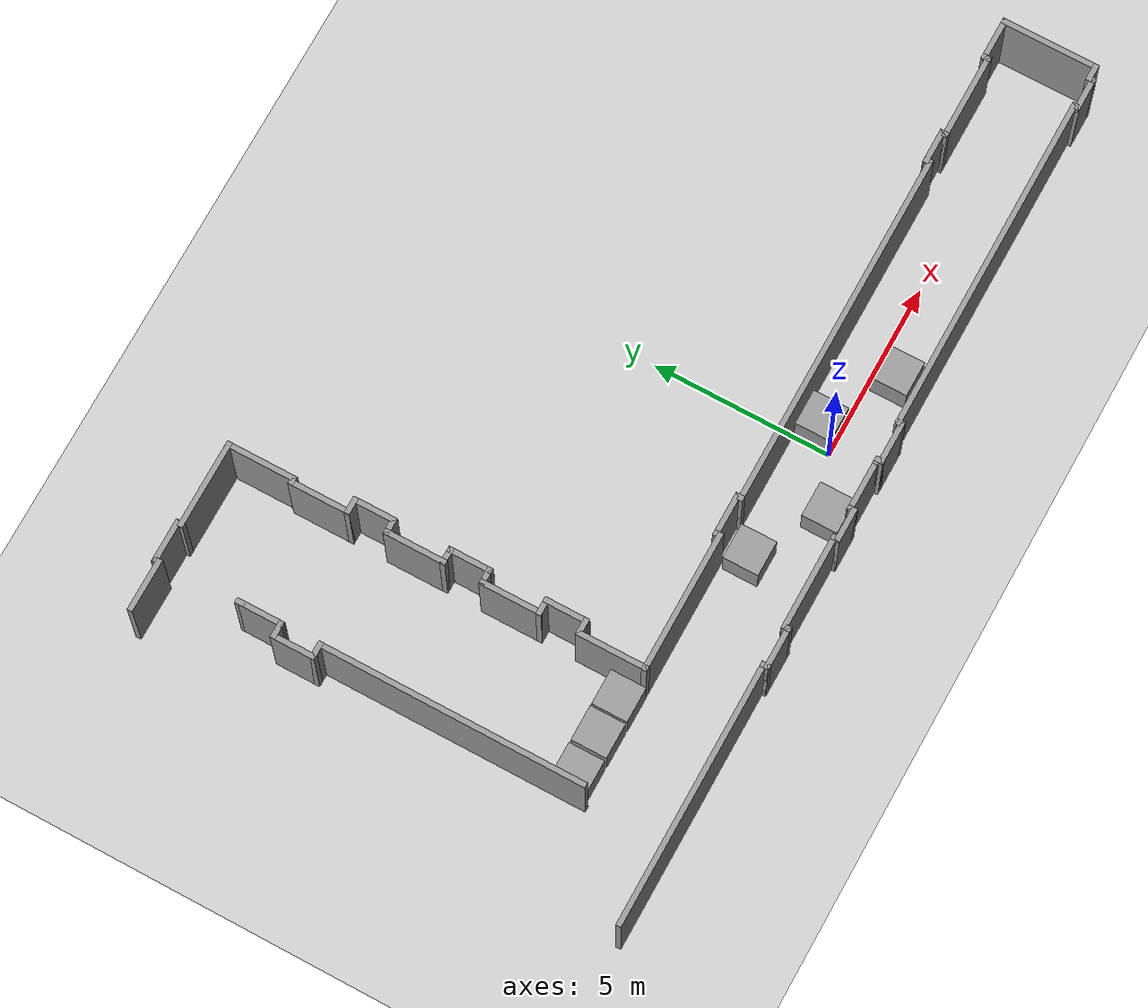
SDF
<sdf version="1.6">
 <world name="default">
  <model name="ground_plane">
   <static>1</static>
   <link name="link">
    <collision name="collision">
     <geometry><plane><normal>0 0 1</normal><size>100 100</size></plane></geometry>
     <surface><friction><ode><mu>100</mu><mu2>50</mu2></ode></friction></surface>
    </collision>
    <visual name="visual">
     <cast_shadows>0</cast_shadows>
     <geometry><plane><normal>0 0 1</normal><size>100 100</size></plane></geometry>
     <material>
      <script><uri>file://media/materials/scripts/gazebo.material</uri><name>Gazebo/Grey</name></script>
     </material>
    </visual>
   </link>
  </model>
  <model name="hallway">
   <pose>-18.4373 5.74333 0 0 -0 0</pose>
   <link name="Wall_185">
    <collision name="Wall_185_Collision">
     <geometry><box><size>7.5 0.15 2.5</size></box></geometry>
     <pose>0 0 1.25 0 -0 0</pose>
    </collision>
    <visual name="Wall_185_Visual">
     <pose>0 0 1.25 0 -0 0</pose>
     <geometry><box><size>7.5 0.15 2.5</size></box></geometry>
     <material>
      <script><uri>file://media/materials/scripts/gazebo.material</uri><name>Gazebo/Grey</name></script>
      <ambient>1 1 1 1</ambient>
     </material>
    </visual>
    <pose>7.43892 -1.04899 0 0 -0 1.5708</pose>
   </link>
   <link name="Wall_187">
    <collision name="Wall_187_Collision">
     <geometry><box><size>0.5 0.15 2.5</size></box></geometry>
     <pose>0 0 1.25 0 -0 0</pose>
    </collision>
    <visual name="Wall_187_Visual">
     <pose>0 0 1.25 0 -0 0</pose>
     <geometry><box><size>0.5 0.15 2.5</size></box></geometry>
     <material>
      <script><uri>file://media/materials/scripts/gazebo.material</uri><name>Gazebo/Grey</name></script>
      <ambient>1 1 1 1</ambient>
     </material>
    </visual>
    <pose>7.26392 2.62601 0 0 -0 3.14159</pose>
   </link>
   <link name="Wall_188">
    <collision name="Wall_188_Collision">
     <geometry><box><size>1.25 0.15 2.5</size></box></geometry>
     <pose>0 0 1.25 0 -0 0</pose>
    </collision>
    <visual name="Wall_188_Visual">
     <pose>0 0 1.25 0 -0 0</pose>
     <geometry><box><size>1.25 0.15 2.5</size></box></geometry>
     <material>
      <script><uri>file://media/materials/scripts/gazebo.material</uri><name>Gazebo/Grey</name></script>
      <ambient>1 1 1 1</ambient>
     </material>
    </visual>
    <pose>7.08892 3.17601 0 0 -0 1.5708</pose>
   </link>
   <link name="Wall_192">
    <collision name="Wall_192_Collision">
     <geometry><box><size>0.5 0.15 2.5</size></box></geometry>
     <pose>0 0 1.25 0 -0 0</pose>
    </collision>
    <visual name="Wall_192_Visual">
     <pose>0 0 1.25 0 -0 0</pose>
     <geometry><box><size>0.5 0.15 2.5</size></box></geometry>
     <material>
      <script><uri>file://media/materials/scripts/gazebo.material</uri><name>Gazebo/Grey</name></script>
      <ambient>1 1 1 1</ambient>
     </material>
    </visual>
    <pose>7.26392 3.72601 0 0 -0 0</pose>
   </link>
   <link name="Wall_193">
    <collision name="Wall_193_Collision">
     <geometry><box><size>1.25 0.15 2.5</size></box></geometry>
     <pose>0 0 1.25 0 -0 0</pose>
    </collision>
    <visual name="Wall_193_Visual">
     <pose>0 0 1.25 0 -0 0</pose>
     <geometry><box><size>1.25 0.15 2.5</size></box></geometry>
     <material>
      <script><uri>file://media/materials/scripts/gazebo.material</uri><name>Gazebo/Grey</name></script>
      <ambient>1 1 1 1</ambient>
     </material>
    </visual>
    <pose>7.43892 4.27601 0 0 -0 1.5708</pose>
   </link>
   <link name="Wall_194">
    <collision name="Wall_194_Collision">
     <geometry><box><size>0.25 0.15 2.5</size></box></geometry>
     <pose>0 0 1.25 0 -0 0</pose>
    </collision>
    <visual name="Wall_194_Visual">
     <pose>0 0 1.25 0 -0 0</pose>
     <geometry><box><size>0.25 0.15 2.5</size></box></geometry>
     <material>
      <script><uri>file://media/materials/scripts/gazebo.material</uri><name>Gazebo/Grey</name></script>
      <ambient>1 1 1 1</ambient>
     </material>
    </visual>
    <pose>7.43892 4.87601 0 0 -0 1.5708</pose>
   </link>
   <link name="Wall_32">
    <collision name="Wall_32_Collision">
     <geometry><box><size>7.5 0.15 2.5</size></box></geometry>
     <pose>0 0 1.25 0 -0 0</pose>
    </collision>
    <visual name="Wall_32_Visual">
     <pose>0 0 1.25 0 -0 0</pose>
     <geometry><box><size>7.5 0.15 2.5</size></box></geometry>
     <material>
      <script><uri>file://media/materials/scripts/gazebo.material</uri><name>Gazebo/Grey</name></script>
      <ambient>1 1 1 1</ambient>
     </material>
    </visual>
    <pose>8.5 -7.15 0 0 -0 0</pose>
   </link>
   <link name="Wall_33">
    <collision name="Wall_33_Collision">
     <geometry><box><size>0.25 0.15 2.5</size></box></geometry>
     <pose>0 0 1.25 0 -0 0</pose>
    </collision>
    <visual name="Wall_33_Visual">
     <pose>0 0 1.25 0 -0 0</pose>
     <geometry><box><size>0.25 0.15 2.5</size></box></geometry>
     <material>
      <script><uri>file://media/materials/scripts/gazebo.material</uri><name>Gazebo/Grey</name></script>
      <ambient>1 1 1 1</ambient>
     </material>
    </visual>
    <pose>12.175 -7.2 0 0 0 -1.5708</pose>
   </link>
   <link name="Wall_34">
    <collision name="Wall_34_Collision">
     <geometry><box><size>1.25 0.15 2.5</size></box></geometry>
     <pose>0 0 1.25 0 -0 0</pose>
    </collision>
    <visual name="Wall_34_Visual">
     <pose>0 0 1.25 0 -0 0</pose>
     <geometry><box><size>1.25 0.15 2.5</size></box></geometry>
     <material>
      <script><uri>file://media/materials/scripts/gazebo.material</uri><name>Gazebo/Grey</name></script>
      <ambient>1 1 1 1</ambient>
     </material>
    </visual>
    <pose>12.725 -7.25 0 0 -0 0</pose>
   </link>
   <link name="Wall_35">
    <collision name="Wall_35_Collision">
     <geometry><box><size>0.25 0.15 2.5</size></box></geometry>
     <pose>0 0 1.25 0 -0 0</pose>
    </collision>
    <visual name="Wall_35_Visual">
     <pose>0 0 1.25 0 -0 0</pose>
     <geometry><box><size>0.25 0.15 2.5</size></box></geometry>
     <material>
      <script><uri>file://media/materials/scripts/gazebo.material</uri><name>Gazebo/Grey</name></script>
      <ambient>1 1 1 1</ambient>
     </material>
    </visual>
    <pose>13.275 -7.2 0 0 -0 1.5708</pose>
   </link>
   <link name="Wall_36">
    <collision name="Wall_36_Collision">
     <geometry><box><size>2.75 0.15 2.5</size></box></geometry>
     <pose>0 0 1.25 0 -0 0</pose>
    </collision>
    <visual name="Wall_36_Visual">
     <pose>0 0 1.25 0 -0 0</pose>
     <geometry><box><size>2.75 0.15 2.5</size></box></geometry>
     <material>
      <script><uri>file://media/materials/scripts/gazebo.material</uri><name>Gazebo/Grey</name></script>
      <ambient>1 1 1 1</ambient>
     </material>
    </visual>
    <pose>14.575 -7.15 0 0 -0 0</pose>
   </link>
   <link name="Wall_37">
    <collision name="Wall_37_Collision">
     <geometry><box><size>0.25 0.15 2.5</size></box></geometry>
     <pose>0 0 1.25 0 -0 0</pose>
    </collision>
    <visual name="Wall_37_Visual">
     <pose>0 0 1.25 0 -0 0</pose>
     <geometry><box><size>0.25 0.15 2.5</size></box></geometry>
     <material>
      <script><uri>file://media/materials/scripts/gazebo.material</uri><name>Gazebo/Grey</name></script>
      <ambient>1 1 1 1</ambient>
     </material>
    </visual>
    <pose>15.875 -7.2 0 0 0 -1.5708</pose>
   </link>
   <link name="Wall_38">
    <collision name="Wall_38_Collision">
     <geometry><box><size>1 0.15 2.5</size></box></geometry>
     <pose>0 0 1.25 0 -0 0</pose>
    </collision>
    <visual name="Wall_38_Visual">
     <pose>0 0 1.25 0 -0 0</pose>
     <geometry><box><size>1 0.15 2.5</size></box></geometry>
     <material>
      <script><uri>file://media/materials/scripts/gazebo.material</uri><name>Gazebo/Grey</name></script>
      <ambient>1 1 1 1</ambient>
     </material>
    </visual>
    <pose>16.3 -7.25 0 0 -0 0</pose>
   </link>
   <link name="Wall_39">
    <collision name="Wall_39_Collision">
     <geometry><box><size>0.25 0.15 2.5</size></box></geometry>
     <pose>0 0 1.25 0 -0 0</pose>
    </collision>
    <visual name="Wall_39_Visual">
     <pose>0 0 1.25 0 -0 0</pose>
     <geometry><box><size>0.25 0.15 2.5</size></box></geometry>
     <material>
      <script><uri>file://media/materials/scripts/gazebo.material</uri><name>Gazebo/Grey</name></script>
      <ambient>1 1 1 1</ambient>
     </material>
    </visual>
    <pose>16.725 -7.2 0 0 -0 1.5708</pose>
   </link>
   <link name="Wall_40">
    <collision name="Wall_40_Collision">
     <geometry><box><size>1.5 0.15 2.5</size></box></geometry>
     <pose>0 0 1.25 0 -0 0</pose>
    </collision>
    <visual name="Wall_40_Visual">
     <pose>0 0 1.25 0 -0 0</pose>
     <geometry><box><size>1.5 0.15 2.5</size></box></geometry>
     <material>
      <script><uri>file://media/materials/scripts/gazebo.material</uri><name>Gazebo/Grey</name></script>
      <ambient>1 1 1 1</ambient>
     </material>
    </visual>
    <pose>17.4 -7.15 0 0 -0 0</pose>
   </link>
   <link name="Wall_42">
    <collision name="Wall_42_Collision">
     <geometry><box><size>0.25 0.15 2.5</size></box></geometry>
     <pose>0 0 1.25 0 -0 0</pose>
    </collision>
    <visual name="Wall_42_Visual">
     <pose>0 0 1.25 0 -0 0</pose>
     <geometry><box><size>0.25 0.15 2.5</size></box></geometry>
     <material>
      <script><uri>file://media/materials/scripts/gazebo.material</uri><name>Gazebo/Grey</name></script>
      <ambient>1 1 1 1</ambient>
     </material>
    </visual>
    <pose>18.125 -7.15 0 0 -0 0</pose>
   </link>
   <link name="Wall_43">
    <collision name="Wall_43_Collision">
     <geometry><box><size>0.25 0.15 2.5</size></box></geometry>
     <pose>0 0 1.25 0 -0 0</pose>
    </collision>
    <visual name="Wall_43_Visual">
     <pose>0 0 1.25 0 -0 0</pose>
     <geometry><box><size>0.25 0.15 2.5</size></box></geometry>
     <material>
      <script><uri>file://media/materials/scripts/gazebo.material</uri><name>Gazebo/Grey</name></script>
      <ambient>1 1 1 1</ambient>
     </material>
    </visual>
    <pose>18.175 -7.2 0 0 0 -1.5708</pose>
   </link>
   <link name="Wall_44">
    <collision name="Wall_44_Collision">
     <geometry><box><size>1.25 0.15 2.5</size></box></geometry>
     <pose>0 0 1.25 0 -0 0</pose>
    </collision>
    <visual name="Wall_44_Visual">
     <pose>0 0 1.25 0 -0 0</pose>
     <geometry><box><size>1.25 0.15 2.5</size></box></geometry>
     <material>
      <script><uri>file://media/materials/scripts/gazebo.material</uri><name>Gazebo/Grey</name></script>
      <ambient>1 1 1 1</ambient>
     </material>
    </visual>
    <pose>18.725 -7.25 0 0 -0 0</pose>
   </link>
   <link name="Wall_45">
    <collision name="Wall_45_Collision">
     <geometry><box><size>0.25 0.15 2.5</size></box></geometry>
     <pose>0 0 1.25 0 -0 0</pose>
    </collision>
    <visual name="Wall_45_Visual">
     <pose>0 0 1.25 0 -0 0</pose>
     <geometry><box><size>0.25 0.15 2.5</size></box></geometry>
     <material>
      <script><uri>file://media/materials/scripts/gazebo.material</uri><name>Gazebo/Grey</name></script>
      <ambient>1 1 1 1</ambient>
     </material>
    </visual>
    <pose>19.275 -7.2 0 0 -0 1.5708</pose>
   </link>
   <link name="Wall_46">
    <collision name="Wall_46_Collision">
     <geometry><box><size>9.75 0.15 2.5</size></box></geometry>
     <pose>0 0 1.25 0 -0 0</pose>
    </collision>
    <visual name="Wall_46_Visual">
     <pose>0 0 1.25 0 -0 0</pose>
     <geometry><box><size>9.75 0.15 2.5</size></box></geometry>
     <material>
      <script><uri>file://media/materials/scripts/gazebo.material</uri><name>Gazebo/Grey</name></script>
      <ambient>1 1 1 1</ambient>
     </material>
    </visual>
    <pose>24.075 -7.15 0 0 -0 0</pose>
   </link>
   <link name="Wall_47">
    <collision name="Wall_47_Collision">
     <geometry><box><size>0.25 0.15 2.5</size></box></geometry>
     <pose>0 0 1.25 0 -0 0</pose>
    </collision>
    <visual name="Wall_47_Visual">
     <pose>0 0 1.25 0 -0 0</pose>
     <geometry><box><size>0.25 0.15 2.5</size></box></geometry>
     <material>
      <script><uri>file://media/materials/scripts/gazebo.material</uri><name>Gazebo/Grey</name></script>
      <ambient>1 1 1 1</ambient>
     </material>
    </visual>
    <pose>28.875 -7.2 0 0 0 -1.5708</pose>
   </link>
   <link name="Wall_48">
    <collision name="Wall_48_Collision">
     <geometry><box><size>1 0.15 2.5</size></box></geometry>
     <pose>0 0 1.25 0 -0 0</pose>
    </collision>
    <visual name="Wall_48_Visual">
     <pose>0 0 1.25 0 -0 0</pose>
     <geometry><box><size>1 0.15 2.5</size></box></geometry>
     <material>
      <script><uri>file://media/materials/scripts/gazebo.material</uri><name>Gazebo/Grey</name></script>
      <ambient>1 1 1 1</ambient>
     </material>
    </visual>
    <pose>29.3 -7.25 0 0 -0 0</pose>
   </link>
   <link name="Wall_49">
    <collision name="Wall_49_Collision">
     <geometry><box><size>0.25 0.15 2.5</size></box></geometry>
     <pose>0 0 1.25 0 -0 0</pose>
    </collision>
    <visual name="Wall_49_Visual">
     <pose>0 0 1.25 0 -0 0</pose>
     <geometry><box><size>0.25 0.15 2.5</size></box></geometry>
     <material>
      <script><uri>file://media/materials/scripts/gazebo.material</uri><name>Gazebo/Grey</name></script>
      <ambient>1 1 1 1</ambient>
     </material>
    </visual>
    <pose>29.725 -7.2 0 0 -0 1.5708</pose>
   </link>
   <link name="Wall_50">
    <collision name="Wall_50_Collision">
     <geometry><box><size>0.5 0.15 2.5</size></box></geometry>
     <pose>0 0 1.25 0 -0 0</pose>
    </collision>
    <visual name="Wall_50_Visual">
     <pose>0 0 1.25 0 -0 0</pose>
     <geometry><box><size>0.5 0.15 2.5</size></box></geometry>
     <material>
      <script><uri>file://media/materials/scripts/gazebo.material</uri><name>Gazebo/Grey</name></script>
      <ambient>1 1 1 1</ambient>
     </material>
    </visual>
    <pose>29.9 -7.15 0 0 -0 0</pose>
   </link>
   <link name="Wall_51">
    <collision name="Wall_51_Collision">
     <geometry><box><size>2.75 0.15 2.5</size></box></geometry>
     <pose>0 0 1.25 0 -0 0</pose>
    </collision>
    <visual name="Wall_51_Visual">
     <pose>0 0 1.25 0 -0 0</pose>
     <geometry><box><size>2.75 0.15 2.5</size></box></geometry>
     <material>
      <script><uri>file://media/materials/scripts/gazebo.material</uri><name>Gazebo/Grey</name></script>
      <ambient>1 1 1 1</ambient>
     </material>
    </visual>
    <pose>30.075 -5.85 0 0 -0 1.5708</pose>
   </link>
   <link name="Wall_52">
    <collision name="Wall_52_Collision">
     <geometry><box><size>1.25 0.15 2.5</size></box></geometry>
     <pose>0 0 1.25 0 -0 0</pose>
    </collision>
    <visual name="Wall_52_Visual">
     <pose>0 0 1.25 0 -0 0</pose>
     <geometry><box><size>1.25 0.15 2.5</size></box></geometry>
     <material>
      <script><uri>file://media/materials/scripts/gazebo.material</uri><name>Gazebo/Grey</name></script>
      <ambient>1 1 1 1</ambient>
     </material>
    </visual>
    <pose>29.525 -4.55 0 0 -0 3.14159</pose>
   </link>
   <link name="Wall_53">
    <collision name="Wall_53_Collision">
     <geometry><box><size>0.25 0.15 2.5</size></box></geometry>
     <pose>0 0 1.25 0 -0 0</pose>
    </collision>
    <visual name="Wall_53_Visual">
     <pose>0 0 1.25 0 -0 0</pose>
     <geometry><box><size>0.25 0.15 2.5</size></box></geometry>
     <material>
      <script><uri>file://media/materials/scripts/gazebo.material</uri><name>Gazebo/Grey</name></script>
      <ambient>1 1 1 1</ambient>
     </material>
    </visual>
    <pose>28.975 -4.6 0 0 0 -1.5708</pose>
   </link>
   <link name="Wall_54">
    <collision name="Wall_54_Collision">
     <geometry><box><size>2.5 0.15 2.5</size></box></geometry>
     <pose>0 0 1.25 0 -0 0</pose>
    </collision>
    <visual name="Wall_54_Visual">
     <pose>0 0 1.25 0 -0 0</pose>
     <geometry><box><size>2.5 0.15 2.5</size></box></geometry>
     <material>
      <script><uri>file://media/materials/scripts/gazebo.material</uri><name>Gazebo/Grey</name></script>
      <ambient>1 1 1 1</ambient>
     </material>
    </visual>
    <pose>27.8 -4.65 0 0 -0 3.14159</pose>
   </link>
   <link name="Wall_55">
    <collision name="Wall_55_Collision">
     <geometry><box><size>0.25 0.15 2.5</size></box></geometry>
     <pose>0 0 1.25 0 -0 0</pose>
    </collision>
    <visual name="Wall_55_Visual">
     <pose>0 0 1.25 0 -0 0</pose>
     <geometry><box><size>0.25 0.15 2.5</size></box></geometry>
     <material>
      <script><uri>file://media/materials/scripts/gazebo.material</uri><name>Gazebo/Grey</name></script>
      <ambient>1 1 1 1</ambient>
     </material>
    </visual>
    <pose>26.625 -4.6 0 0 -0 1.5708</pose>
   </link>
   <link name="Wall_56">
    <collision name="Wall_56_Collision">
     <geometry><box><size>1 0.15 2.5</size></box></geometry>
     <pose>0 0 1.25 0 -0 0</pose>
    </collision>
    <visual name="Wall_56_Visual">
     <pose>0 0 1.25 0 -0 0</pose>
     <geometry><box><size>1 0.15 2.5</size></box></geometry>
     <material>
      <script><uri>file://media/materials/scripts/gazebo.material</uri><name>Gazebo/Grey</name></script>
      <ambient>1 1 1 1</ambient>
     </material>
    </visual>
    <pose>26.2 -4.55 0 0 -0 3.14159</pose>
   </link>
   <link name="Wall_57">
    <collision name="Wall_57_Collision">
     <geometry><box><size>0.25 0.15 2.5</size></box></geometry>
     <pose>0 0 1.25 0 -0 0</pose>
    </collision>
    <visual name="Wall_57_Visual">
     <pose>0 0 1.25 0 -0 0</pose>
     <geometry><box><size>0.25 0.15 2.5</size></box></geometry>
     <material>
      <script><uri>file://media/materials/scripts/gazebo.material</uri><name>Gazebo/Grey</name></script>
      <ambient>1 1 1 1</ambient>
     </material>
    </visual>
    <pose>25.775 -4.6 0 0 0 -1.5708</pose>
   </link>
   <link name="Wall_58">
    <collision name="Wall_58_Collision">
     <geometry><box><size>10.25 0.15 2.5</size></box></geometry>
     <pose>0 0 1.25 0 -0 0</pose>
    </collision>
    <visual name="Wall_58_Visual">
     <pose>0 0 1.25 0 -0 0</pose>
     <geometry><box><size>10.25 0.15 2.5</size></box></geometry>
     <material>
      <script><uri>file://media/materials/scripts/gazebo.material</uri><name>Gazebo/Grey</name></script>
      <ambient>1 1 1 1</ambient>
     </material>
    </visual>
    <pose>20.725 -4.65 0 0 -0 3.14159</pose>
   </link>
   <link name="Wall_59">
    <collision name="Wall_59_Collision">
     <geometry><box><size>0.25 0.15 2.5</size></box></geometry>
     <pose>0 0 1.25 0 -0 0</pose>
    </collision>
    <visual name="Wall_59_Visual">
     <pose>0 0 1.25 0 -0 0</pose>
     <geometry><box><size>0.25 0.15 2.5</size></box></geometry>
     <material>
      <script><uri>file://media/materials/scripts/gazebo.material</uri><name>Gazebo/Grey</name></script>
      <ambient>1 1 1 1</ambient>
     </material>
    </visual>
    <pose>15.675 -4.6 0 0 -0 1.5708</pose>
   </link>
   <link name="Wall_60">
    <collision name="Wall_60_Collision">
     <geometry><box><size>1.25 0.15 2.5</size></box></geometry>
     <pose>0 0 1.25 0 -0 0</pose>
    </collision>
    <visual name="Wall_60_Visual">
     <pose>0 0 1.25 0 -0 0</pose>
     <geometry><box><size>1.25 0.15 2.5</size></box></geometry>
     <material>
      <script><uri>file://media/materials/scripts/gazebo.material</uri><name>Gazebo/Grey</name></script>
      <ambient>1 1 1 1</ambient>
     </material>
    </visual>
    <pose>15.125 -4.55 0 0 -0 3.14159</pose>
   </link>
   <link name="Wall_61">
    <collision name="Wall_61_Collision">
     <geometry><box><size>0.25 0.15 2.5</size></box></geometry>
     <pose>0 0 1.25 0 -0 0</pose>
    </collision>
    <visual name="Wall_61_Visual">
     <pose>0 0 1.25 0 -0 0</pose>
     <geometry><box><size>0.25 0.15 2.5</size></box></geometry>
     <material>
      <script><uri>file://media/materials/scripts/gazebo.material</uri><name>Gazebo/Grey</name></script>
      <ambient>1 1 1 1</ambient>
     </material>
    </visual>
    <pose>14.575 -4.6 0 0 0 -1.5708</pose>
   </link>
   <link name="Wall_62">
    <collision name="Wall_62_Collision">
     <geometry><box><size>4 0.15 2.5</size></box></geometry>
     <pose>0 0 1.25 0 -0 0</pose>
    </collision>
    <visual name="Wall_62_Visual">
     <pose>0 0 1.25 0 -0 0</pose>
     <geometry><box><size>4 0.15 2.5</size></box></geometry>
     <material>
      <script><uri>file://media/materials/scripts/gazebo.material</uri><name>Gazebo/Grey</name></script>
      <ambient>1 1 1 1</ambient>
     </material>
    </visual>
    <pose>12.65 -4.65 0 0 -0 3.14159</pose>
   </link>
   <link name="Wall_64">
    <collision name="Wall_64_Collision">
     <geometry><box><size>2 0.15 2.5</size></box></geometry>
     <pose>0 0 1.25 0 -0 0</pose>
    </collision>
    <visual name="Wall_64_Visual">
     <pose>0 0 1.25 0 -0 0</pose>
     <geometry><box><size>2 0.15 2.5</size></box></geometry>
     <material>
      <script><uri>file://media/materials/scripts/gazebo.material</uri><name>Gazebo/Grey</name></script>
      <ambient>1 1 1 1</ambient>
     </material>
    </visual>
    <pose>10.725 -3.725 0 0 -0 1.5708</pose>
   </link>
   <link name="Wall_65">
    <collision name="Wall_65_Collision">
     <geometry><box><size>0.5 0.15 2.5</size></box></geometry>
     <pose>0 0 1.25 0 -0 0</pose>
    </collision>
    <visual name="Wall_65_Visual">
     <pose>0 0 1.25 0 -0 0</pose>
     <geometry><box><size>0.5 0.15 2.5</size></box></geometry>
     <material>
      <script><uri>file://media/materials/scripts/gazebo.material</uri><name>Gazebo/Grey</name></script>
      <ambient>1 1 1 1</ambient>
     </material>
    </visual>
    <pose>10.9 -2.8 0 0 -0 0</pose>
   </link>
   <link name="Wall_66">
    <collision name="Wall_66_Collision">
     <geometry><box><size>1.25 0.15 2.5</size></box></geometry>
     <pose>0 0 1.25 0 -0 0</pose>
    </collision>
    <visual name="Wall_66_Visual">
     <pose>0 0 1.25 0 -0 0</pose>
     <geometry><box><size>1.25 0.15 2.5</size></box></geometry>
     <material>
      <script><uri>file://media/materials/scripts/gazebo.material</uri><name>Gazebo/Grey</name></script>
      <ambient>1 1 1 1</ambient>
     </material>
    </visual>
    <pose>11.075 -2.25 0 0 -0 1.5708</pose>
   </link>
   <link name="Wall_67">
    <collision name="Wall_67_Collision">
     <geometry><box><size>0.5 0.15 2.5</size></box></geometry>
     <pose>0 0 1.25 0 -0 0</pose>
    </collision>
    <visual name="Wall_67_Visual">
     <pose>0 0 1.25 0 -0 0</pose>
     <geometry><box><size>0.5 0.15 2.5</size></box></geometry>
     <material>
      <script><uri>file://media/materials/scripts/gazebo.material</uri><name>Gazebo/Grey</name></script>
      <ambient>1 1 1 1</ambient>
     </material>
    </visual>
    <pose>10.9 -1.7 0 0 -0 3.14159</pose>
   </link>
   <link name="Wall_68">
    <collision name="Wall_68_Collision">
     <geometry><box><size>1.75 0.15 2.5</size></box></geometry>
     <pose>0 0 1.25 0 -0 0</pose>
    </collision>
    <visual name="Wall_68_Visual">
     <pose>0 0 1.25 0 -0 0</pose>
     <geometry><box><size>1.75 0.15 2.5</size></box></geometry>
     <material>
      <script><uri>file://media/materials/scripts/gazebo.material</uri><name>Gazebo/Grey</name></script>
      <ambient>1 1 1 1</ambient>
     </material>
    </visual>
    <pose>10.725 -0.9 0 0 -0 1.5708</pose>
   </link>
   <link name="Wall_69">
    <collision name="Wall_69_Collision">
     <geometry><box><size>0.5 0.15 2.5</size></box></geometry>
     <pose>0 0 1.25 0 -0 0</pose>
    </collision>
    <visual name="Wall_69_Visual">
     <pose>0 0 1.25 0 -0 0</pose>
     <geometry><box><size>0.5 0.15 2.5</size></box></geometry>
     <material>
      <script><uri>file://media/materials/scripts/gazebo.material</uri><name>Gazebo/Grey</name></script>
      <ambient>1 1 1 1</ambient>
     </material>
    </visual>
    <pose>10.9 -0.1 0 0 -0 0</pose>
   </link>
   <link name="Wall_70">
    <collision name="Wall_70_Collision">
     <geometry><box><size>1.25 0.15 2.5</size></box></geometry>
     <pose>0 0 1.25 0 -0 0</pose>
    </collision>
    <visual name="Wall_70_Visual">
     <pose>0 0 1.25 0 -0 0</pose>
     <geometry><box><size>1.25 0.15 2.5</size></box></geometry>
     <material>
      <script><uri>file://media/materials/scripts/gazebo.material</uri><name>Gazebo/Grey</name></script>
      <ambient>1 1 1 1</ambient>
     </material>
    </visual>
    <pose>11.075 0.45 0 0 -0 1.5708</pose>
   </link>
   <link name="Wall_71">
    <collision name="Wall_71_Collision">
     <geometry><box><size>0.5 0.15 2.5</size></box></geometry>
     <pose>0 0 1.25 0 -0 0</pose>
    </collision>
    <visual name="Wall_71_Visual">
     <pose>0 0 1.25 0 -0 0</pose>
     <geometry><box><size>0.5 0.15 2.5</size></box></geometry>
     <material>
      <script><uri>file://media/materials/scripts/gazebo.material</uri><name>Gazebo/Grey</name></script>
      <ambient>1 1 1 1</ambient>
     </material>
    </visual>
    <pose>10.9 1 0 0 -0 3.14159</pose>
   </link>
   <link name="Wall_73">
    <collision name="Wall_73_Collision">
     <geometry><box><size>1.75 0.15 2.5</size></box></geometry>
     <pose>0 0 1.25 0 -0 0</pose>
    </collision>
    <visual name="Wall_73_Visual">
     <pose>0 0 1.25 0 -0 0</pose>
     <geometry><box><size>1.75 0.15 2.5</size></box></geometry>
     <material>
      <script><uri>file://media/materials/scripts/gazebo.material</uri><name>Gazebo/Grey</name></script>
      <ambient>1 1 1 1</ambient>
     </material>
    </visual>
    <pose>10.725 1.8 0 0 -0 1.5708</pose>
   </link>
   <link name="Wall_74">
    <collision name="Wall_74_Collision">
     <geometry><box><size>0.5 0.15 2.5</size></box></geometry>
     <pose>0 0 1.25 0 -0 0</pose>
    </collision>
    <visual name="Wall_74_Visual">
     <pose>0 0 1.25 0 -0 0</pose>
     <geometry><box><size>0.5 0.15 2.5</size></box></geometry>
     <material>
      <script><uri>file://media/materials/scripts/gazebo.material</uri><name>Gazebo/Grey</name></script>
      <ambient>1 1 1 1</ambient>
     </material>
    </visual>
    <pose>10.9 2.6 0 0 -0 0</pose>
   </link>
   <link name="Wall_75">
    <collision name="Wall_75_Collision">
     <geometry><box><size>1.25 0.15 2.5</size></box></geometry>
     <pose>0 0 1.25 0 -0 0</pose>
    </collision>
    <visual name="Wall_75_Visual">
     <pose>0 0 1.25 0 -0 0</pose>
     <geometry><box><size>1.25 0.15 2.5</size></box></geometry>
     <material>
      <script><uri>file://media/materials/scripts/gazebo.material</uri><name>Gazebo/Grey</name></script>
      <ambient>1 1 1 1</ambient>
     </material>
    </visual>
    <pose>11.075 3.15 0 0 -0 1.5708</pose>
   </link>
   <link name="Wall_76">
    <collision name="Wall_76_Collision">
     <geometry><box><size>0.5 0.15 2.5</size></box></geometry>
     <pose>0 0 1.25 0 -0 0</pose>
    </collision>
    <visual name="Wall_76_Visual">
     <pose>0 0 1.25 0 -0 0</pose>
     <geometry><box><size>0.5 0.15 2.5</size></box></geometry>
     <material>
      <script><uri>file://media/materials/scripts/gazebo.material</uri><name>Gazebo/Grey</name></script>
      <ambient>1 1 1 1</ambient>
     </material>
    </visual>
    <pose>10.9 3.7 0 0 -0 3.14159</pose>
   </link>
   <link name="Wall_77">
    <collision name="Wall_77_Collision">
     <geometry><box><size>1.75 0.15 2.5</size></box></geometry>
     <pose>0 0 1.25 0 -0 0</pose>
    </collision>
    <visual name="Wall_77_Visual">
     <pose>0 0 1.25 0 -0 0</pose>
     <geometry><box><size>1.75 0.15 2.5</size></box></geometry>
     <material>
      <script><uri>file://media/materials/scripts/gazebo.material</uri><name>Gazebo/Grey</name></script>
      <ambient>1 1 1 1</ambient>
     </material>
    </visual>
    <pose>10.725 4.5 0 0 -0 1.5708</pose>
   </link>
   <link name="Wall_78">
    <collision name="Wall_78_Collision">
     <geometry><box><size>0.25 0.15 2.5</size></box></geometry>
     <pose>0 0 1.25 0 -0 0</pose>
    </collision>
    <visual name="Wall_78_Visual">
     <pose>0 0 1.25 0 -0 0</pose>
     <geometry><box><size>0.25 0.15 2.5</size></box></geometry>
     <material>
      <script><uri>file://media/materials/scripts/gazebo.material</uri><name>Gazebo/Grey</name></script>
      <ambient>1 1 1 1</ambient>
     </material>
    </visual>
    <pose>10.775 5.3 0 0 -0 0</pose>
   </link>
   <link name="Wall_79">
    <collision name="Wall_79_Collision">
     <geometry><box><size>2 0.15 2.5</size></box></geometry>
     <pose>0 0 1.25 0 -0 0</pose>
    </collision>
    <visual name="Wall_79_Visual">
     <pose>0 0 1.25 0 -0 0</pose>
     <geometry><box><size>2 0.15 2.5</size></box></geometry>
     <material>
      <script><uri>file://media/materials/scripts/gazebo.material</uri><name>Gazebo/Grey</name></script>
      <ambient>1 1 1 1</ambient>
     </material>
    </visual>
    <pose>10.825 6.225 0 0 -0 1.5708</pose>
   </link>
   <link name="Wall_80">
    <collision name="Wall_80_Collision">
     <geometry><box><size>2.5 0.15 2.5</size></box></geometry>
     <pose>0 0 1.25 0 -0 0</pose>
    </collision>
    <visual name="Wall_80_Visual">
     <pose>0 0 1.25 0 -0 0</pose>
     <geometry><box><size>2.5 0.15 2.5</size></box></geometry>
     <material>
      <script><uri>file://media/materials/scripts/gazebo.material</uri><name>Gazebo/Grey</name></script>
      <ambient>1 1 1 1</ambient>
     </material>
    </visual>
    <pose>9.65 7.15 0 0 -0 3.14159</pose>
   </link>
   <link name="Wall_81">
    <collision name="Wall_81_Collision">
     <geometry><box><size>0.25 0.15 2.5</size></box></geometry>
     <pose>0 0 1.25 0 -0 0</pose>
    </collision>
    <visual name="Wall_81_Visual">
     <pose>0 0 1.25 0 -0 0</pose>
     <geometry><box><size>0.25 0.15 2.5</size></box></geometry>
     <material>
      <script><uri>file://media/materials/scripts/gazebo.material</uri><name>Gazebo/Grey</name></script>
      <ambient>1 1 1 1</ambient>
     </material>
    </visual>
    <pose>8.475 7.2 0 0 -0 1.5708</pose>
   </link>
   <link name="Wall_82">
    <collision name="Wall_82_Collision">
     <geometry><box><size>1.25 0.15 2.5</size></box></geometry>
     <pose>0 0 1.25 0 -0 0</pose>
    </collision>
    <visual name="Wall_82_Visual">
     <pose>0 0 1.25 0 -0 0</pose>
     <geometry><box><size>1.25 0.15 2.5</size></box></geometry>
     <material>
      <script><uri>file://media/materials/scripts/gazebo.material</uri><name>Gazebo/Grey</name></script>
      <ambient>1 1 1 1</ambient>
     </material>
    </visual>
    <pose>7.925 7.25 0 0 -0 3.14159</pose>
   </link>
   <link name="Wall_83">
    <collision name="Wall_83_Collision">
     <geometry><box><size>0.25 0.15 2.5</size></box></geometry>
     <pose>0 0 1.25 0 -0 0</pose>
    </collision>
    <visual name="Wall_83_Visual">
     <pose>0 0 1.25 0 -0 0</pose>
     <geometry><box><size>0.25 0.15 2.5</size></box></geometry>
     <material>
      <script><uri>file://media/materials/scripts/gazebo.material</uri><name>Gazebo/Grey</name></script>
      <ambient>1 1 1 1</ambient>
     </material>
    </visual>
    <pose>7.375 7.2 0 0 0 -1.5708</pose>
   </link>
   <link name="Wall_84">
    <collision name="Wall_84_Collision">
     <geometry><box><size>1.5 0.15 2.5</size></box></geometry>
     <pose>0 0 1.25 0 -0 0</pose>
    </collision>
    <visual name="Wall_84_Visual">
     <pose>0 0 1.25 0 -0 0</pose>
     <geometry><box><size>1.5 0.15 2.5</size></box></geometry>
     <material>
      <script><uri>file://media/materials/scripts/gazebo.material</uri><name>Gazebo/Grey</name></script>
      <ambient>1 1 1 1</ambient>
     </material>
    </visual>
    <pose>6.7 7.15 0 0 -0 3.14159</pose>
   </link>
   <static>1</static>
  </model>
  <model name="unit_box_0">
   <pose>2.52316 -0.606639 0.499995 1e-05 -0 0</pose>
   <link name="link">
    <inertial>
     <mass>1</mass>
     <inertia>
      <ixx>0.166667</ixx>
      <ixy>0</ixy>
      <ixz>0</ixz>
      <iyy>0.166667</iyy>
      <iyz>0</iyz>
      <izz>0.166667</izz>
     </inertia>
    </inertial>
    <collision name="collision"><geometry><box><size>1 1 1</size></box></geometry></collision>
    <visual name="visual">
     <geometry><box><size>1 1 1</size></box></geometry>
     <material>
      <script><name>Gazebo/Grey</name><uri>file://media/materials/scripts/gazebo.material</uri></script>
     </material>
    </visual>
   </link>
  </model>
  <model name="unit_box_1">
   <pose>0.544199 0.511453 0.499995 0 -1e-05 0</pose>
   <link name="link">
    <inertial>
     <mass>1</mass>
     <inertia>
      <ixx>0.166667</ixx>
      <ixy>0</ixy>
      <ixz>0</ixz>
      <iyy>0.166667</iyy>
      <iyz>0</iyz>
      <izz>0.166667</izz>
     </inertia>
    </inertial>
    <collision name="collision"><geometry><box><size>1 1 1</size></box></geometry></collision>
    <visual name="visual">
     <geometry><box><size>1 1 1</size></box></geometry>
     <material>
      <script><name>Gazebo/Grey</name><uri>file://media/materials/scripts/gazebo.material</uri></script>
     </material>
    </visual>
   </link>
  </model>
  <model name="unit_box_2">
   <pose>-1.51289 -0.762502 0.499995 1e-05 -0 0</pose>
   <link name="link">
    <inertial>
     <mass>1</mass>
     <inertia>
      <ixx>0.166667</ixx>
      <ixy>0</ixy>
      <ixz>0</ixz>
      <iyy>0.166667</iyy>
      <iyz>0</iyz>
      <izz>0.166667</izz>
     </inertia>
    </inertial>
    <collision name="collision"><geometry><box><size>1 1 1</size></box></geometry></collision>
    <visual name="visual">
     <geometry><box><size>1 1 1</size></box></geometry>
     <material>
      <script><name>Gazebo/Grey</name><uri>file://media/materials/scripts/gazebo.material</uri></script>
     </material>
    </visual>
   </link>
  </model>
  <model name="unit_box_3">
   <pose>-3.42441 0.450294 0.499995 0 -1e-05 0</pose>
   <link name="link">
    <inertial>
     <mass>1</mass>
     <inertia>
      <ixx>0.166667</ixx>
      <ixy>0</ixy>
      <ixz>0</ixz>
      <iyy>0.166667</iyy>
      <iyz>0</iyz>
      <izz>0.166667</izz>
     </inertia>
    </inertial>
    <collision name="collision"><geometry><box><size>1 1 1</size></box></geometry></collision>
    <visual name="visual">
     <geometry><box><size>1 1 1</size></box></geometry>
     <material>
      <script><name>Gazebo/Grey</name><uri>file://media/materials/scripts/gazebo.material</uri></script>
     </material>
    </visual>
   </link>
  </model>
  <model name="unit_box_5">
   <pose>-8.29193 1.51198 0.499995 0 -1e-05 0</pose>
   <link name="link">
    <inertial>
     <mass>1</mass>
     <inertia>
      <ixx>0.166667</ixx>
      <ixy>0</ixy>
      <ixz>0</ixz>
      <iyy>0.166667</iyy>
      <iyz>0</iyz>
      <izz>0.166667</izz>
     </inertia>
    </inertial>
    <collision name="collision"><geometry><box><size>1 1 1</size></box></geometry></collision>
    <visual name="visual">
     <geometry><box><size>1 1 1</size></box></geometry>
     <material>
      <script><name>Gazebo/Grey</name><uri>file://media/materials/scripts/gazebo.material</uri></script>
     </material>
    </visual>
   </link>
  </model>
  <model name="unit_box_6">
   <pose>-9.34141 1.52018 0.499995 1e-05 -0 0</pose>
   <link name="link">
    <inertial>
     <mass>1</mass>
     <inertia>
      <ixx>0.166667</ixx>
      <ixy>0</ixy>
      <ixz>0</ixz>
      <iyy>0.166667</iyy>
      <iyz>0</iyz>
      <izz>0.166667</izz>
     </inertia>
    </inertial>
    <collision name="collision"><geometry><box><size>1 1 1</size></box></geometry></collision>
    <visual name="visual">
     <geometry><box><size>1 1 1</size></box></geometry>
     <material>
      <script><name>Gazebo/Grey</name><uri>file://media/materials/scripts/gazebo.material</uri></script>
     </material>
    </visual>
   </link>
  </model>
  <model name="unit_box_7">
   <pose>-10.4163 1.52828 0.499995 0 -1e-05 0</pose>
   <link name="link">
    <inertial>
     <mass>1</mass>
     <inertia>
      <ixx>0.166667</ixx>
      <ixy>0</ixy>
      <ixz>0</ixz>
      <iyy>0.166667</iyy>
      <iyz>0</iyz>
      <izz>0.166667</izz>
     </inertia>
    </inertial>
    <collision name="collision"><geometry><box><size>1 1 1</size></box></geometry></collision>
    <visual name="visual">
     <geometry><box><size>1 1 1</size></box></geometry>
     <material>
      <script><name>Gazebo/Grey</name><uri>file://media/materials/scripts/gazebo.material</uri></script>
     </material>
    </visual>
   </link>
  </model>
 </world>
</sdf>
